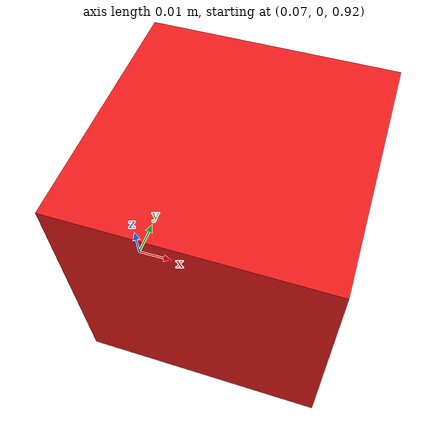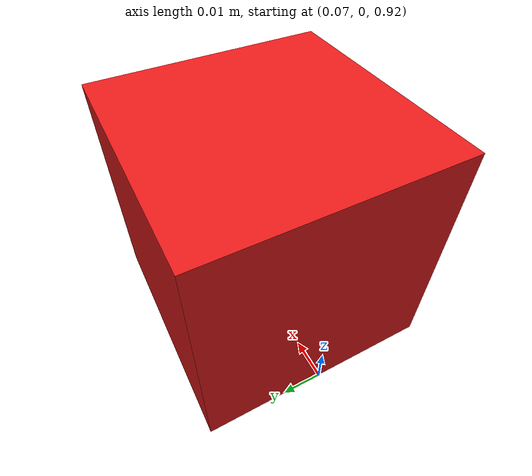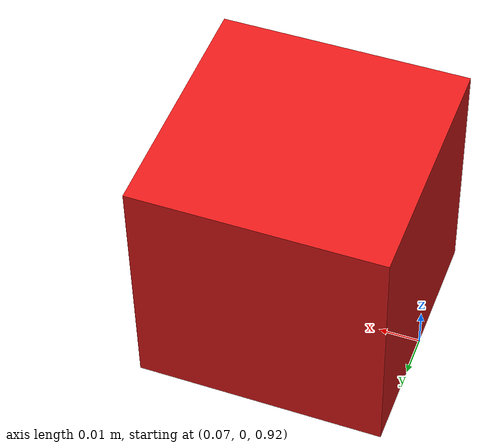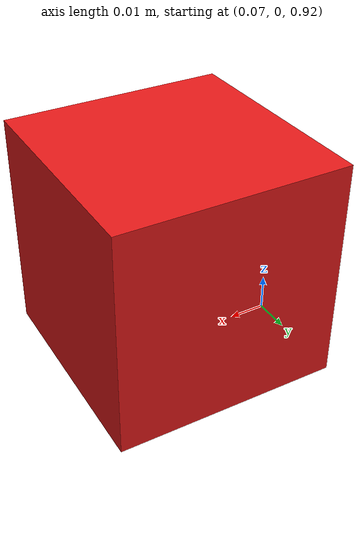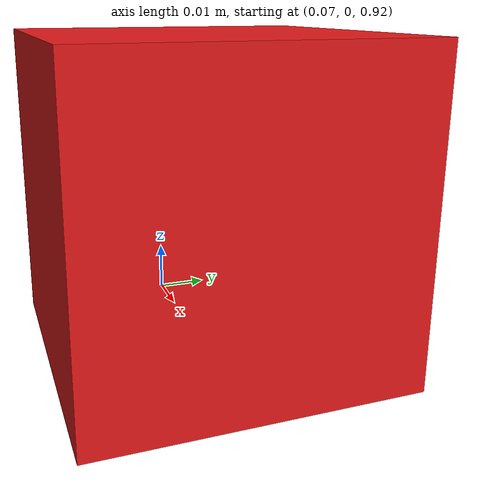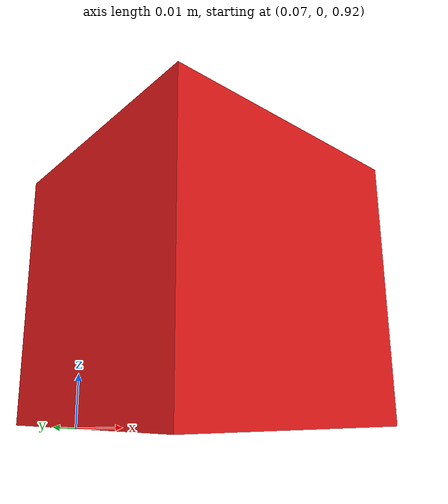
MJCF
<mujoco model="scene">

  <visual>
    <headlight ambient="0.4 0.4 0.4" diffuse="0.6 0.6 0.6" specular="0.1 0.1 0.1"/>
    <rgba haze="0.15 0.15 0.15 1"/>
  </visual>

  <worldbody>

    <!-- Lighting -->
    <light name="overhead" pos="0 0 2.5" dir="0 0 -1" diffuse="0.8 0.8 0.8" specular="0 0 0" directional="true" castshadow="false"/>
    <light name="fill"     pos="1 -1 2"  dir="-1 1 -1" diffuse="0.3 0.3 0.3" specular="0 0 0" directional="true" castshadow="false"/>

    <!-- Camera -->
    <camera name="scene_cam" pos="0 -1.414 2.414" xyaxes="1 0 0  0 0.707 0.707"/>

    <!-- Red cube -->
    <body name="red_cube" pos="0.1 0.0 0.95">
      <freejoint name="red_cube_freejoint"/>
      <geom name="red_cube_geom" type="box" size="0.03 0.03 0.03"
            rgba="0.9 0.1 0.1 1" mass="1.0" condim="4" friction="0.001 0.001 0.001"/>
    </body>

  </worldbody>

</mujoco>
